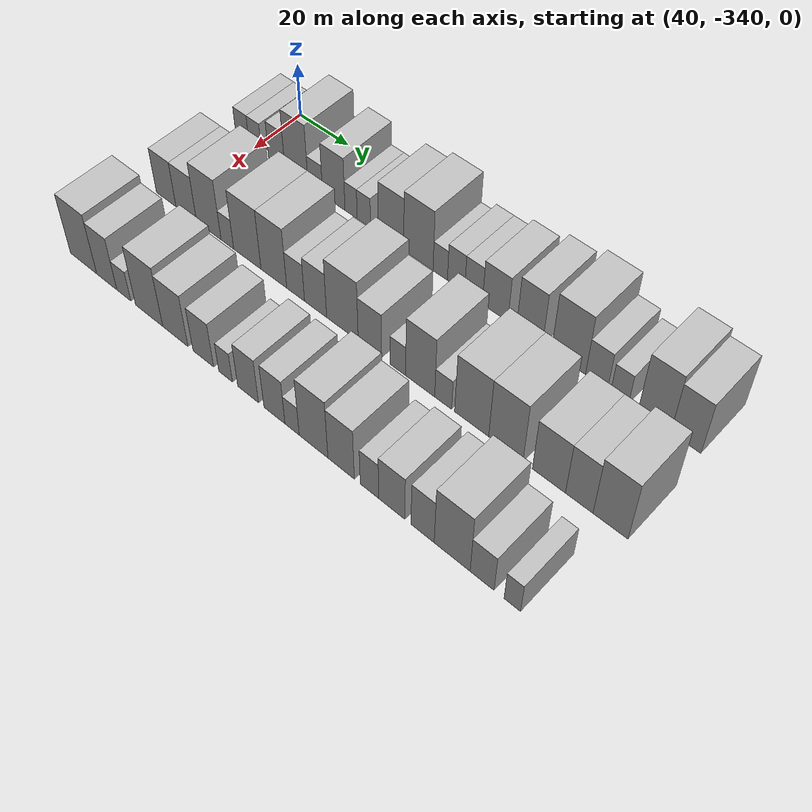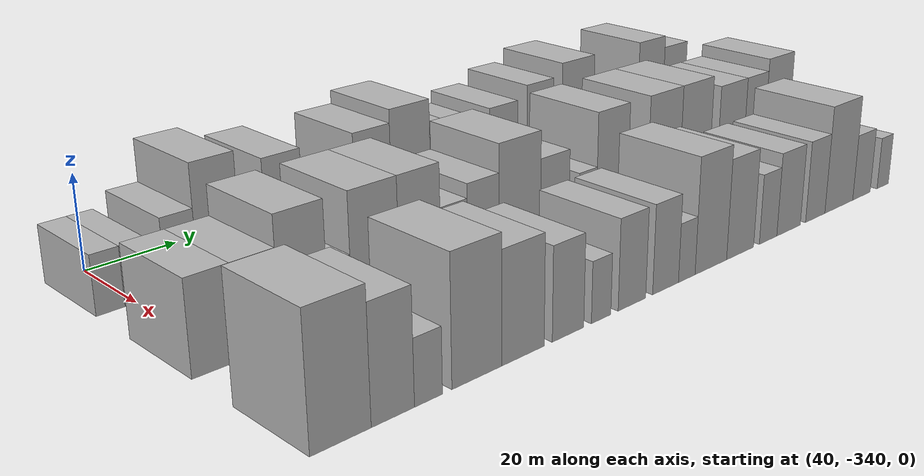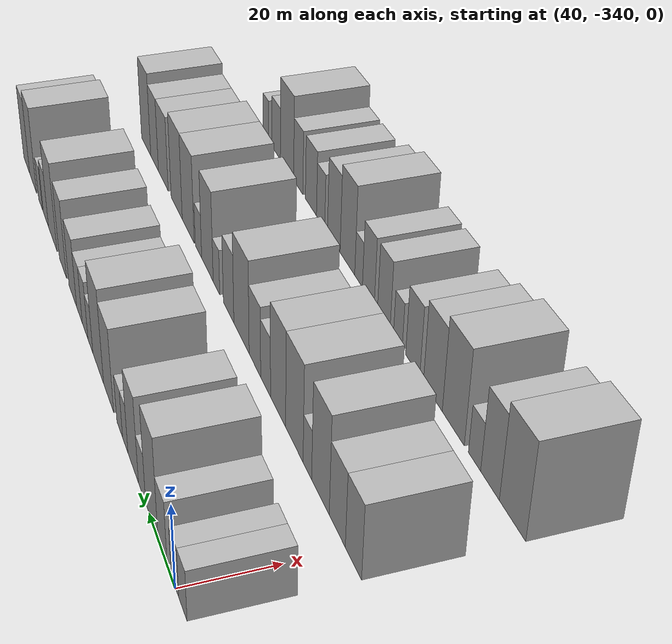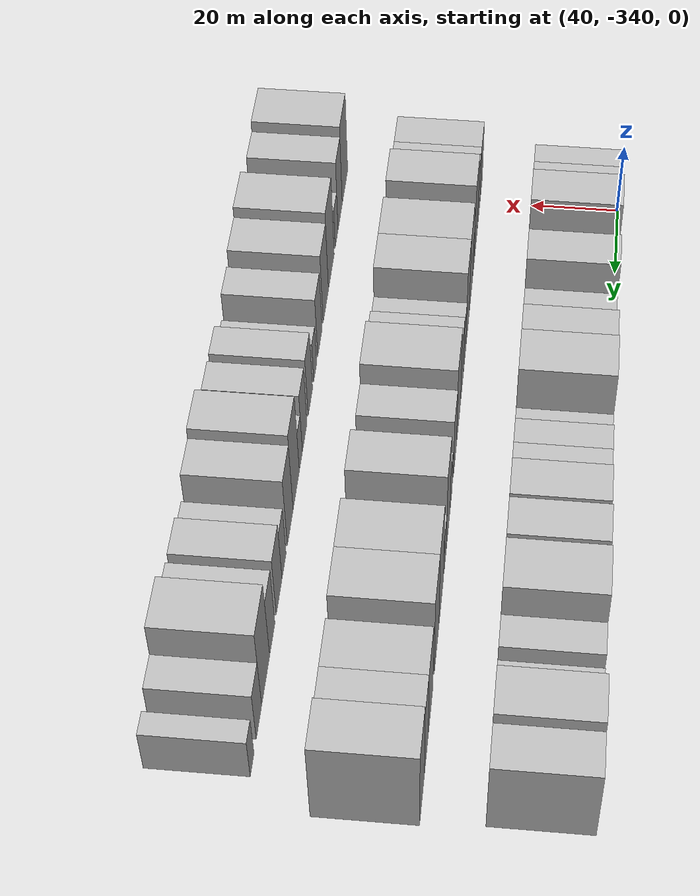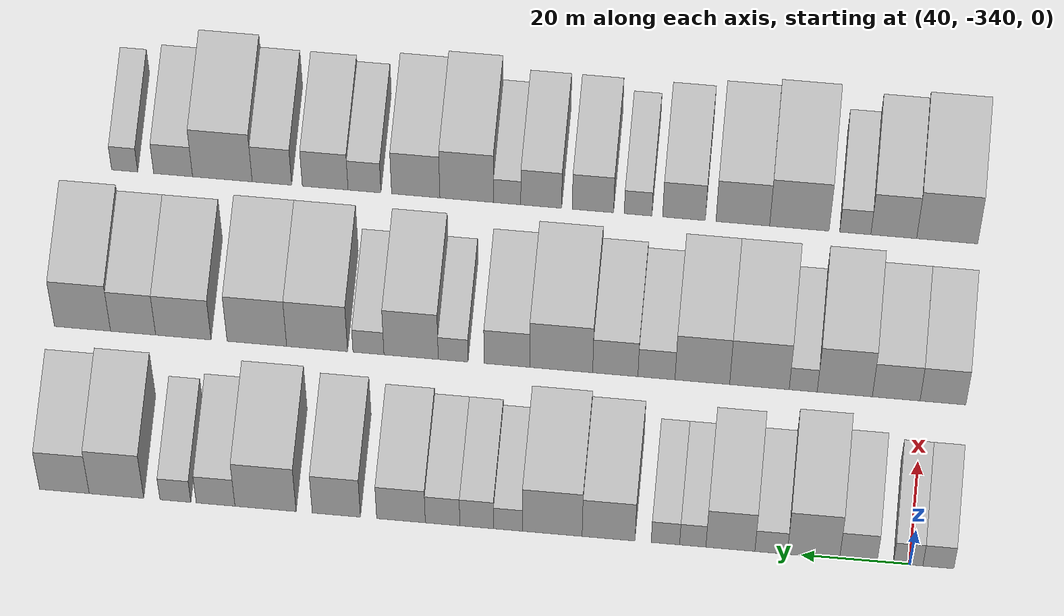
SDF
<sdf version="1.6">
 <world name="default">
  <model name="building_1">
   <static>1</static>
   <pose>50.0000 -345.1450 0 0.000000 0.000000 0.000000</pose>
   <link name="link">
    <pose>0 0 6.00 0 0 0</pose>
    <collision name="collision"><geometry><box><size>20.0000 5.7100 12.0000</size></box></geometry></collision>
    <visual name="visual">
     <cast_shadows>0</cast_shadows>
     <geometry><box><size>20.0000 5.7100 12.0000</size></box></geometry>
     <material>
      <script>
       <uri>model://HANNAS_wall/materials/scripts</uri>
       <uri>model://HANNAS_wall/materials/textures</uri>
       <name>vrc/HANNAS_wall</name>
      </script>
     </material>
    </visual>
   </link>
  </model>
  <model name="building_2">
   <static>1</static>
   <pose>50.0000 -339.5794 0 0.000000 0.000000 0.000000</pose>
   <link name="link">
    <pose>0 0 6.00 0 0 0</pose>
    <collision name="collision"><geometry><box><size>20.0000 5.4212 12.0000</size></box></geometry></collision>
    <visual name="visual">
     <cast_shadows>0</cast_shadows>
     <geometry><box><size>20.0000 5.4212 12.0000</size></box></geometry>
     <material>
      <script>
       <uri>model://HANNAS_wall/materials/scripts</uri>
       <uri>model://HANNAS_wall/materials/textures</uri>
       <name>vrc/HANNAS_wall</name>
      </script>
     </material>
    </visual>
   </link>
  </model>
  <model name="building_3">
   <static>1</static>
   <pose>50.0000 -330.4114 0 0.000000 0.000000 0.000000</pose>
   <link name="link">
    <pose>0 0 7.50 0 0 0</pose>
    <collision name="collision"><geometry><box><size>20.0000 6.9149 15.0000</size></box></geometry></collision>
    <visual name="visual">
     <cast_shadows>0</cast_shadows>
     <geometry><box><size>20.0000 6.9149 15.0000</size></box></geometry>
     <material>
      <script>
       <uri>model://HANNAS_wall/materials/scripts</uri>
       <uri>model://HANNAS_wall/materials/textures</uri>
       <name>vrc/HANNAS_wall</name>
      </script>
     </material>
    </visual>
   </link>
  </model>
  <model name="building_4">
   <static>1</static>
   <pose>50.0000 -322.1188 0 0.000000 0.000000 0.000000</pose>
   <link name="link">
    <pose>0 0 12.00 0 0 0</pose>
    <collision name="collision"><geometry><box><size>20.0000 9.6703 24.0000</size></box></geometry></collision>
    <visual name="visual">
     <cast_shadows>0</cast_shadows>
     <geometry><box><size>20.0000 9.6703 24.0000</size></box></geometry>
     <material>
      <script>
       <uri>model://HANNAS_wall/materials/scripts</uri>
       <uri>model://HANNAS_wall/materials/textures</uri>
       <name>vrc/HANNAS_wall</name>
      </script>
     </material>
    </visual>
   </link>
  </model>
  <model name="building_5">
   <static>1</static>
   <pose>50.0000 -314.3056 0 0.000000 0.000000 0.000000</pose>
   <link name="link">
    <pose>0 0 6.00 0 0 0</pose>
    <collision name="collision"><geometry><box><size>20.0000 5.9560 12.0000</size></box></geometry></collision>
    <visual name="visual">
     <cast_shadows>0</cast_shadows>
     <geometry><box><size>20.0000 5.9560 12.0000</size></box></geometry>
     <material>
      <script>
       <uri>model://HANNAS_wall/materials/scripts</uri>
       <uri>model://HANNAS_wall/materials/textures</uri>
       <name>vrc/HANNAS_wall</name>
      </script>
     </material>
    </visual>
   </link>
  </model>
  <model name="building_6">
   <static>1</static>
   <pose>50.0000 -306.8105 0 0.000000 0.000000 0.000000</pose>
   <link name="link">
    <pose>0 0 10.50 0 0 0</pose>
    <collision name="collision"><geometry><box><size>20.0000 9.0343 21.0000</size></box></geometry></collision>
    <visual name="visual">
     <cast_shadows>0</cast_shadows>
     <geometry><box><size>20.0000 9.0343 21.0000</size></box></geometry>
     <material>
      <script>
       <uri>model://HANNAS_wall/materials/scripts</uri>
       <uri>model://HANNAS_wall/materials/textures</uri>
       <name>vrc/HANNAS_wall</name>
      </script>
     </material>
    </visual>
   </link>
  </model>
  <model name="building_7">
   <static>1</static>
   <pose>50.0000 -299.8714 0 0.000000 0.000000 0.000000</pose>
   <link name="link">
    <pose>0 0 6.00 0 0 0</pose>
    <collision name="collision"><geometry><box><size>20.0000 4.8438 12.0000</size></box></geometry></collision>
    <visual name="visual">
     <cast_shadows>0</cast_shadows>
     <geometry><box><size>20.0000 4.8438 12.0000</size></box></geometry>
     <material>
      <script>
       <uri>model://HANNAS_wall/materials/scripts</uri>
       <uri>model://HANNAS_wall/materials/textures</uri>
       <name>vrc/HANNAS_wall</name>
      </script>
     </material>
    </visual>
   </link>
  </model>
  <model name="building_8">
   <static>1</static>
   <pose>50.0000 -294.8273 0 0.000000 0.000000 0.000000</pose>
   <link name="link">
    <pose>0 0 6.00 0 0 0</pose>
    <collision name="collision"><geometry><box><size>20.0000 5.2445 12.0000</size></box></geometry></collision>
    <visual name="visual">
     <cast_shadows>0</cast_shadows>
     <geometry><box><size>20.0000 5.2445 12.0000</size></box></geometry>
     <material>
      <script>
       <uri>model://HANNAS_wall/materials/scripts</uri>
       <uri>model://HANNAS_wall/materials/textures</uri>
       <name>vrc/HANNAS_wall</name>
      </script>
     </material>
    </visual>
   </link>
  </model>
  <model name="building_9">
   <static>1</static>
   <pose>50.0000 -284.3233 0 0.000000 0.000000 0.000000</pose>
   <link name="link">
    <pose>0 0 10.50 0 0 0</pose>
    <collision name="collision"><geometry><box><size>20.0000 9.7636 21.0000</size></box></geometry></collision>
    <visual name="visual">
     <cast_shadows>0</cast_shadows>
     <geometry><box><size>20.0000 9.7636 21.0000</size></box></geometry>
     <material>
      <script>
       <uri>model://HANNAS_wall/materials/scripts</uri>
       <uri>model://HANNAS_wall/materials/textures</uri>
       <name>vrc/HANNAS_wall</name>
      </script>
     </material>
    </visual>
   </link>
  </model>
  <model name="building_10">
   <static>1</static>
   <pose>50.0000 -273.9174 0 0.000000 0.000000 0.000000</pose>
   <link name="link">
    <pose>0 0 12.00 0 0 0</pose>
    <collision name="collision"><geometry><box><size>20.0000 11.0482 24.0000</size></box></geometry></collision>
    <visual name="visual">
     <cast_shadows>0</cast_shadows>
     <geometry><box><size>20.0000 11.0482 24.0000</size></box></geometry>
     <material>
      <script>
       <uri>model://HANNAS_wall/materials/scripts</uri>
       <uri>model://HANNAS_wall/materials/textures</uri>
       <name>vrc/HANNAS_wall</name>
      </script>
     </material>
    </visual>
   </link>
  </model>
  <model name="building_11">
   <static>1</static>
   <pose>50.0000 -265.7426 0 0.000000 0.000000 0.000000</pose>
   <link name="link">
    <pose>0 0 6.00 0 0 0</pose>
    <collision name="collision"><geometry><box><size>20.0000 5.3013 12.0000</size></box></geometry></collision>
    <visual name="visual">
     <cast_shadows>0</cast_shadows>
     <geometry><box><size>20.0000 5.3013 12.0000</size></box></geometry>
     <material>
      <script>
       <uri>model://HANNAS_wall/materials/scripts</uri>
       <uri>model://HANNAS_wall/materials/textures</uri>
       <name>vrc/HANNAS_wall</name>
      </script>
     </material>
    </visual>
   </link>
  </model>
  <model name="building_12">
   <static>1</static>
   <pose>50.0000 -259.9697 0 0.000000 0.000000 0.000000</pose>
   <link name="link">
    <pose>0 0 7.50 0 0 0</pose>
    <collision name="collision"><geometry><box><size>20.0000 6.2447 15.0000</size></box></geometry></collision>
    <visual name="visual">
     <cast_shadows>0</cast_shadows>
     <geometry><box><size>20.0000 6.2447 15.0000</size></box></geometry>
     <material>
      <script>
       <uri>model://HANNAS_wall/materials/scripts</uri>
       <uri>model://HANNAS_wall/materials/textures</uri>
       <name>vrc/HANNAS_wall</name>
      </script>
     </material>
    </visual>
   </link>
  </model>
  <model name="building_13">
   <static>1</static>
   <pose>50.0000 -253.6553 0 0.000000 0.000000 0.000000</pose>
   <link name="link">
    <pose>0 0 7.50 0 0 0</pose>
    <collision name="collision"><geometry><box><size>20.0000 6.3839 15.0000</size></box></geometry></collision>
    <visual name="visual">
     <cast_shadows>0</cast_shadows>
     <geometry><box><size>20.0000 6.3839 15.0000</size></box></geometry>
     <material>
      <script>
       <uri>model://HANNAS_wall/materials/scripts</uri>
       <uri>model://HANNAS_wall/materials/textures</uri>
       <name>vrc/HANNAS_wall</name>
      </script>
     </material>
    </visual>
   </link>
  </model>
  <model name="building_14">
   <static>1</static>
   <pose>50.0000 -245.9653 0 0.000000 0.000000 0.000000</pose>
   <link name="link">
    <pose>0 0 9.00 0 0 0</pose>
    <collision name="collision"><geometry><box><size>20.0000 8.9961 18.0000</size></box></geometry></collision>
    <visual name="visual">
     <cast_shadows>0</cast_shadows>
     <geometry><box><size>20.0000 8.9961 18.0000</size></box></geometry>
     <material>
      <script>
       <uri>model://HANNAS_wall/materials/scripts</uri>
       <uri>model://HANNAS_wall/materials/textures</uri>
       <name>vrc/HANNAS_wall</name>
      </script>
     </material>
    </visual>
   </link>
  </model>
  <model name="building_15">
   <static>1</static>
   <pose>50.0000 -234.0127 0 0.000000 0.000000 0.000000</pose>
   <link name="link">
    <pose>0 0 10.50 0 0 0</pose>
    <collision name="collision"><geometry><box><size>20.0000 8.9091 21.0000</size></box></geometry></collision>
    <visual name="visual">
     <cast_shadows>0</cast_shadows>
     <geometry><box><size>20.0000 8.9091 21.0000</size></box></geometry>
     <material>
      <script>
       <uri>model://HANNAS_wall/materials/scripts</uri>
       <uri>model://HANNAS_wall/materials/textures</uri>
       <name>vrc/HANNAS_wall</name>
      </script>
     </material>
    </visual>
   </link>
  </model>
  <model name="building_16">
   <static>1</static>
   <pose>50.0000 -220.8957 0 0.000000 0.000000 0.000000</pose>
   <link name="link">
    <pose>0 0 12.00 0 0 0</pose>
    <collision name="collision"><geometry><box><size>20.0000 11.3247 24.0000</size></box></geometry></collision>
    <visual name="visual">
     <cast_shadows>0</cast_shadows>
     <geometry><box><size>20.0000 11.3247 24.0000</size></box></geometry>
     <material>
      <script>
       <uri>model://HANNAS_wall/materials/scripts</uri>
       <uri>model://HANNAS_wall/materials/textures</uri>
       <name>vrc/HANNAS_wall</name>
      </script>
     </material>
    </visual>
   </link>
  </model>
  <model name="building_17">
   <static>1</static>
   <pose>50.0000 -211.6455 0 0.000000 0.000000 0.000000</pose>
   <link name="link">
    <pose>0 0 7.50 0 0 0</pose>
    <collision name="collision"><geometry><box><size>20.0000 7.1758 15.0000</size></box></geometry></collision>
    <visual name="visual">
     <cast_shadows>0</cast_shadows>
     <geometry><box><size>20.0000 7.1758 15.0000</size></box></geometry>
     <material>
      <script>
       <uri>model://HANNAS_wall/materials/scripts</uri>
       <uri>model://HANNAS_wall/materials/textures</uri>
       <name>vrc/HANNAS_wall</name>
      </script>
     </material>
    </visual>
   </link>
  </model>
  <model name="building_18">
   <static>1</static>
   <pose>50.0000 -204.1950 0 0.000000 0.000000 0.000000</pose>
   <link name="link">
    <pose>0 0 6.00 0 0 0</pose>
    <collision name="collision"><geometry><box><size>20.0000 5.7251 12.0000</size></box></geometry></collision>
    <visual name="visual">
     <cast_shadows>0</cast_shadows>
     <geometry><box><size>20.0000 5.7251 12.0000</size></box></geometry>
     <material>
      <script>
       <uri>model://HANNAS_wall/materials/scripts</uri>
       <uri>model://HANNAS_wall/materials/textures</uri>
       <name>vrc/HANNAS_wall</name>
      </script>
     </material>
    </visual>
   </link>
  </model>
  <model name="building_19">
   <static>1</static>
   <pose>50.0000 -193.2733 0 0.000000 0.000000 0.000000</pose>
   <link name="link">
    <pose>0 0 12.00 0 0 0</pose>
    <collision name="collision"><geometry><box><size>20.0000 10.1184 24.0000</size></box></geometry></collision>
    <visual name="visual">
     <cast_shadows>0</cast_shadows>
     <geometry><box><size>20.0000 10.1184 24.0000</size></box></geometry>
     <material>
      <script>
       <uri>model://HANNAS_wall/materials/scripts</uri>
       <uri>model://HANNAS_wall/materials/textures</uri>
       <name>vrc/HANNAS_wall</name>
      </script>
     </material>
    </visual>
   </link>
  </model>
  <model name="building_20">
   <static>1</static>
   <pose>50.0000 -183.6181 0 0.000000 0.000000 0.000000</pose>
   <link name="link">
    <pose>0 0 10.50 0 0 0</pose>
    <collision name="collision"><geometry><box><size>20.0000 9.1921 21.0000</size></box></geometry></collision>
    <visual name="visual">
     <cast_shadows>0</cast_shadows>
     <geometry><box><size>20.0000 9.1921 21.0000</size></box></geometry>
     <material>
      <script>
       <uri>model://HANNAS_wall/materials/scripts</uri>
       <uri>model://HANNAS_wall/materials/textures</uri>
       <name>vrc/HANNAS_wall</name>
      </script>
     </material>
    </visual>
   </link>
  </model>
  <model name="building_78">
   <static>1</static>
   <pose>82.0000 -343.7383 0 0.000000 0.000000 0.000000</pose>
   <link name="link">
    <pose>0 0 9.00 0 0 0</pose>
    <collision name="collision"><geometry><box><size>20.0000 8.5235 18.0000</size></box></geometry></collision>
    <visual name="visual">
     <cast_shadows>0</cast_shadows>
     <geometry><box><size>20.0000 8.5235 18.0000</size></box></geometry>
     <material>
      <script>
       <uri>model://HANNAS_wall/materials/scripts</uri>
       <uri>model://HANNAS_wall/materials/textures</uri>
       <name>vrc/HANNAS_wall</name>
      </script>
     </material>
    </visual>
   </link>
  </model>
  <model name="building_79">
   <static>1</static>
   <pose>82.0000 -335.0491 0 0.000000 0.000000 0.000000</pose>
   <link name="link">
    <pose>0 0 9.00 0 0 0</pose>
    <collision name="collision"><geometry><box><size>20.0000 8.8548 18.0000</size></box></geometry></collision>
    <visual name="visual">
     <cast_shadows>0</cast_shadows>
     <geometry><box><size>20.0000 8.8548 18.0000</size></box></geometry>
     <material>
      <script>
       <uri>model://HANNAS_wall/materials/scripts</uri>
       <uri>model://HANNAS_wall/materials/textures</uri>
       <name>vrc/HANNAS_wall</name>
      </script>
     </material>
    </visual>
   </link>
  </model>
  <model name="building_80">
   <static>1</static>
   <pose>82.0000 -325.4952 0 0.000000 0.000000 0.000000</pose>
   <link name="link">
    <pose>0 0 12.00 0 0 0</pose>
    <collision name="collision"><geometry><box><size>20.0000 10.2530 24.0000</size></box></geometry></collision>
    <visual name="visual">
     <cast_shadows>0</cast_shadows>
     <geometry><box><size>20.0000 10.2530 24.0000</size></box></geometry>
     <material>
      <script>
       <uri>model://HANNAS_wall/materials/scripts</uri>
       <uri>model://HANNAS_wall/materials/textures</uri>
       <name>vrc/HANNAS_wall</name>
      </script>
     </material>
    </visual>
   </link>
  </model>
  <model name="building_81">
   <static>1</static>
   <pose>82.0000 -317.7630 0 0.000000 0.000000 0.000000</pose>
   <link name="link">
    <pose>0 0 6.00 0 0 0</pose>
    <collision name="collision"><geometry><box><size>20.0000 5.2115 12.0000</size></box></geometry></collision>
    <visual name="visual">
     <cast_shadows>0</cast_shadows>
     <geometry><box><size>20.0000 5.2115 12.0000</size></box></geometry>
     <material>
      <script>
       <uri>model://HANNAS_wall/materials/scripts</uri>
       <uri>model://HANNAS_wall/materials/textures</uri>
       <name>vrc/HANNAS_wall</name>
      </script>
     </material>
    </visual>
   </link>
  </model>
  <model name="building_82">
   <static>1</static>
   <pose>82.0000 -309.6234 0 0.000000 0.000000 0.000000</pose>
   <link name="link">
    <pose>0 0 12.00 0 0 0</pose>
    <collision name="collision"><geometry><box><size>20.0000 11.0677 24.0000</size></box></geometry></collision>
    <visual name="visual">
     <cast_shadows>0</cast_shadows>
     <geometry><box><size>20.0000 11.0677 24.0000</size></box></geometry>
     <material>
      <script>
       <uri>model://HANNAS_wall/materials/scripts</uri>
       <uri>model://HANNAS_wall/materials/textures</uri>
       <name>vrc/HANNAS_wall</name>
      </script>
     </material>
    </visual>
   </link>
  </model>
  <model name="building_83">
   <static>1</static>
   <pose>82.0000 -299.0033 0 0.000000 0.000000 0.000000</pose>
   <link name="link">
    <pose>0 0 12.00 0 0 0</pose>
    <collision name="collision"><geometry><box><size>20.0000 10.1725 24.0000</size></box></geometry></collision>
    <visual name="visual">
     <cast_shadows>0</cast_shadows>
     <geometry><box><size>20.0000 10.1725 24.0000</size></box></geometry>
     <material>
      <script>
       <uri>model://HANNAS_wall/materials/scripts</uri>
       <uri>model://HANNAS_wall/materials/textures</uri>
       <name>vrc/HANNAS_wall</name>
      </script>
     </material>
    </visual>
   </link>
  </model>
  <model name="building_84">
   <static>1</static>
   <pose>82.0000 -290.4678 0 0.000000 0.000000 0.000000</pose>
   <link name="link">
    <pose>0 0 7.50 0 0 0</pose>
    <collision name="collision"><geometry><box><size>20.0000 6.8985 15.0000</size></box></geometry></collision>
    <visual name="visual">
     <cast_shadows>0</cast_shadows>
     <geometry><box><size>20.0000 6.8985 15.0000</size></box></geometry>
     <material>
      <script>
       <uri>model://HANNAS_wall/materials/scripts</uri>
       <uri>model://HANNAS_wall/materials/textures</uri>
       <name>vrc/HANNAS_wall</name>
      </script>
     </material>
    </visual>
   </link>
  </model>
  <model name="building_85">
   <static>1</static>
   <pose>82.0000 -282.8060 0 0.000000 0.000000 0.000000</pose>
   <link name="link">
    <pose>0 0 9.00 0 0 0</pose>
    <collision name="collision"><geometry><box><size>20.0000 8.4251 18.0000</size></box></geometry></collision>
    <visual name="visual">
     <cast_shadows>0</cast_shadows>
     <geometry><box><size>20.0000 8.4251 18.0000</size></box></geometry>
     <material>
      <script>
       <uri>model://HANNAS_wall/materials/scripts</uri>
       <uri>model://HANNAS_wall/materials/textures</uri>
       <name>vrc/HANNAS_wall</name>
      </script>
     </material>
    </visual>
   </link>
  </model>
  <model name="building_86">
   <static>1</static>
   <pose>82.0000 -272.7230 0 0.000000 0.000000 0.000000</pose>
   <link name="link">
    <pose>0 0 12.00 0 0 0</pose>
    <collision name="collision"><geometry><box><size>20.0000 11.7410 24.0000</size></box></geometry></collision>
    <visual name="visual">
     <cast_shadows>0</cast_shadows>
     <geometry><box><size>20.0000 11.7410 24.0000</size></box></geometry>
     <material>
      <script>
       <uri>model://HANNAS_wall/materials/scripts</uri>
       <uri>model://HANNAS_wall/materials/textures</uri>
       <name>vrc/HANNAS_wall</name>
      </script>
     </material>
    </visual>
   </link>
  </model>
  <model name="building_87">
   <static>1</static>
   <pose>82.0000 -262.6083 0 0.000000 0.000000 0.000000</pose>
   <link name="link">
    <pose>0 0 9.00 0 0 0</pose>
    <collision name="collision"><geometry><box><size>20.0000 8.4883 18.0000</size></box></geometry></collision>
    <visual name="visual">
     <cast_shadows>0</cast_shadows>
     <geometry><box><size>20.0000 8.4883 18.0000</size></box></geometry>
     <material>
      <script>
       <uri>model://HANNAS_wall/materials/scripts</uri>
       <uri>model://HANNAS_wall/materials/textures</uri>
       <name>vrc/HANNAS_wall</name>
      </script>
     </material>
    </visual>
   </link>
  </model>
  <model name="building_88">
   <static>1</static>
   <pose>82.0000 -252.5880 0 0.000000 0.000000 0.000000</pose>
   <link name="link">
    <pose>0 0 6.00 0 0 0</pose>
    <collision name="collision"><geometry><box><size>20.0000 5.5523 12.0000</size></box></geometry></collision>
    <visual name="visual">
     <cast_shadows>0</cast_shadows>
     <geometry><box><size>20.0000 5.5523 12.0000</size></box></geometry>
     <material>
      <script>
       <uri>model://HANNAS_wall/materials/scripts</uri>
       <uri>model://HANNAS_wall/materials/textures</uri>
       <name>vrc/HANNAS_wall</name>
      </script>
     </material>
    </visual>
   </link>
  </model>
  <model name="building_89">
   <static>1</static>
   <pose>82.0000 -244.7472 0 0.000000 0.000000 0.000000</pose>
   <link name="link">
    <pose>0 0 12.00 0 0 0</pose>
    <collision name="collision"><geometry><box><size>20.0000 10.1295 24.0000</size></box></geometry></collision>
    <visual name="visual">
     <cast_shadows>0</cast_shadows>
     <geometry><box><size>20.0000 10.1295 24.0000</size></box></geometry>
     <material>
      <script>
       <uri>model://HANNAS_wall/materials/scripts</uri>
       <uri>model://HANNAS_wall/materials/textures</uri>
       <name>vrc/HANNAS_wall</name>
      </script>
     </material>
    </visual>
   </link>
  </model>
  <model name="building_90">
   <static>1</static>
   <pose>82.0000 -236.7899 0 0.000000 0.000000 0.000000</pose>
   <link name="link">
    <pose>0 0 6.00 0 0 0</pose>
    <collision name="collision"><geometry><box><size>20.0000 5.7850 12.0000</size></box></geometry></collision>
    <visual name="visual">
     <cast_shadows>0</cast_shadows>
     <geometry><box><size>20.0000 5.7850 12.0000</size></box></geometry>
     <material>
      <script>
       <uri>model://HANNAS_wall/materials/scripts</uri>
       <uri>model://HANNAS_wall/materials/textures</uri>
       <name>vrc/HANNAS_wall</name>
      </script>
     </material>
    </visual>
   </link>
  </model>
  <model name="building_91">
   <static>1</static>
   <pose>82.0000 -227.2061 0 0.000000 0.000000 0.000000</pose>
   <link name="link">
    <pose>0 0 12.00 0 0 0</pose>
    <collision name="collision"><geometry><box><size>20.0000 11.3827 24.0000</size></box></geometry></collision>
    <visual name="visual">
     <cast_shadows>0</cast_shadows>
     <geometry><box><size>20.0000 11.3827 24.0000</size></box></geometry>
     <material>
      <script>
       <uri>model://HANNAS_wall/materials/scripts</uri>
       <uri>model://HANNAS_wall/materials/textures</uri>
       <name>vrc/HANNAS_wall</name>
      </script>
     </material>
    </visual>
   </link>
  </model>
  <model name="building_92">
   <static>1</static>
   <pose>82.0000 -215.9540 0 0.000000 0.000000 0.000000</pose>
   <link name="link">
    <pose>0 0 12.00 0 0 0</pose>
    <collision name="collision"><geometry><box><size>20.0000 11.1214 24.0000</size></box></geometry></collision>
    <visual name="visual">
     <cast_shadows>0</cast_shadows>
     <geometry><box><size>20.0000 11.1214 24.0000</size></box></geometry>
     <material>
      <script>
       <uri>model://HANNAS_wall/materials/scripts</uri>
       <uri>model://HANNAS_wall/materials/textures</uri>
       <name>vrc/HANNAS_wall</name>
      </script>
     </material>
    </visual>
   </link>
  </model>
  <model name="building_93">
   <static>1</static>
   <pose>82.0000 -202.2170 0 0.000000 0.000000 0.000000</pose>
   <link name="link">
    <pose>0 0 10.50 0 0 0</pose>
    <collision name="collision"><geometry><box><size>20.0000 10.3527 21.0000</size></box></geometry></collision>
    <visual name="visual">
     <cast_shadows>0</cast_shadows>
     <geometry><box><size>20.0000 10.3527 21.0000</size></box></geometry>
     <material>
      <script>
       <uri>model://HANNAS_wall/materials/scripts</uri>
       <uri>model://HANNAS_wall/materials/textures</uri>
       <name>vrc/HANNAS_wall</name>
      </script>
     </material>
    </visual>
   </link>
  </model>
  <model name="building_94">
   <static>1</static>
   <pose>82.0000 -192.8221 0 0.000000 0.000000 0.000000</pose>
   <link name="link">
    <pose>0 0 10.50 0 0 0</pose>
    <collision name="collision"><geometry><box><size>20.0000 8.4371 21.0000</size></box></geometry></collision>
    <visual name="visual">
     <cast_shadows>0</cast_shadows>
     <geometry><box><size>20.0000 8.4371 21.0000</size></box></geometry>
     <material>
      <script>
       <uri>model://HANNAS_wall/materials/scripts</uri>
       <uri>model://HANNAS_wall/materials/textures</uri>
       <name>vrc/HANNAS_wall</name>
      </script>
     </material>
    </visual>
   </link>
  </model>
  <model name="building_95">
   <static>1</static>
   <pose>82.0000 -183.3629 0 0.000000 0.000000 0.000000</pose>
   <link name="link">
    <pose>0 0 12.00 0 0 0</pose>
    <collision name="collision"><geometry><box><size>20.0000 10.4814 24.0000</size></box></geometry></collision>
    <visual name="visual">
     <cast_shadows>0</cast_shadows>
     <geometry><box><size>20.0000 10.4814 24.0000</size></box></geometry>
     <material>
      <script>
       <uri>model://HANNAS_wall/materials/scripts</uri>
       <uri>model://HANNAS_wall/materials/textures</uri>
       <name>vrc/HANNAS_wall</name>
      </script>
     </material>
    </visual>
   </link>
  </model>
  <model name="building_146">
   <static>1</static>
   <pose>114.0000 -342.2808 0 0.000000 0.000000 0.000000</pose>
   <link name="link">
    <pose>0 0 12.00 0 0 0</pose>
    <collision name="collision"><geometry><box><size>20.0000 11.4384 24.0000</size></box></geometry></collision>
    <visual name="visual">
     <cast_shadows>0</cast_shadows>
     <geometry><box><size>20.0000 11.4384 24.0000</size></box></geometry>
     <material>
      <script>
       <uri>model://HANNAS_wall/materials/scripts</uri>
       <uri>model://HANNAS_wall/materials/textures</uri>
       <name>vrc/HANNAS_wall</name>
      </script>
     </material>
    </visual>
   </link>
  </model>
  <model name="building_147">
   <static>1</static>
   <pose>114.0000 -332.2686 0 0.000000 0.000000 0.000000</pose>
   <link name="link">
    <pose>0 0 10.50 0 0 0</pose>
    <collision name="collision"><geometry><box><size>20.0000 8.5861 21.0000</size></box></geometry></collision>
    <visual name="visual">
     <cast_shadows>0</cast_shadows>
     <geometry><box><size>20.0000 8.5861 21.0000</size></box></geometry>
     <material>
      <script>
       <uri>model://HANNAS_wall/materials/scripts</uri>
       <uri>model://HANNAS_wall/materials/textures</uri>
       <name>vrc/HANNAS_wall</name>
      </script>
     </material>
    </visual>
   </link>
  </model>
  <model name="building_148">
   <static>1</static>
   <pose>114.0000 -325.0605 0 0.000000 0.000000 0.000000</pose>
   <link name="link">
    <pose>0 0 6.00 0 0 0</pose>
    <collision name="collision"><geometry><box><size>20.0000 5.8301 12.0000</size></box></geometry></collision>
    <visual name="visual">
     <cast_shadows>0</cast_shadows>
     <geometry><box><size>20.0000 5.8301 12.0000</size></box></geometry>
     <material>
      <script>
       <uri>model://HANNAS_wall/materials/scripts</uri>
       <uri>model://HANNAS_wall/materials/textures</uri>
       <name>vrc/HANNAS_wall</name>
      </script>
     </material>
    </visual>
   </link>
  </model>
  <model name="building_149">
   <static>1</static>
   <pose>114.0000 -314.5723 0 0.000000 0.000000 0.000000</pose>
   <link name="link">
    <pose>0 0 12.00 0 0 0</pose>
    <collision name="collision"><geometry><box><size>20.0000 11.1462 24.0000</size></box></geometry></collision>
    <visual name="visual">
     <cast_shadows>0</cast_shadows>
     <geometry><box><size>20.0000 11.1462 24.0000</size></box></geometry>
     <material>
      <script>
       <uri>model://HANNAS_wall/materials/scripts</uri>
       <uri>model://HANNAS_wall/materials/textures</uri>
       <name>vrc/HANNAS_wall</name>
      </script>
     </material>
    </visual>
   </link>
  </model>
  <model name="building_150">
   <static>1</static>
   <pose>114.0000 -303.9671 0 0.000000 0.000000 0.000000</pose>
   <link name="link">
    <pose>0 0 10.50 0 0 0</pose>
    <collision name="collision"><geometry><box><size>20.0000 10.0642 21.0000</size></box></geometry></collision>
    <visual name="visual">
     <cast_shadows>0</cast_shadows>
     <geometry><box><size>20.0000 10.0642 21.0000</size></box></geometry>
     <material>
      <script>
       <uri>model://HANNAS_wall/materials/scripts</uri>
       <uri>model://HANNAS_wall/materials/textures</uri>
       <name>vrc/HANNAS_wall</name>
      </script>
     </material>
    </visual>
   </link>
  </model>
  <model name="building_151">
   <static>1</static>
   <pose>114.0000 -292.9278 0 0.000000 0.000000 0.000000</pose>
   <link name="link">
    <pose>0 0 9.00 0 0 0</pose>
    <collision name="collision"><geometry><box><size>20.0000 8.0143 18.0000</size></box></geometry></collision>
    <visual name="visual">
     <cast_shadows>0</cast_shadows>
     <geometry><box><size>20.0000 8.0143 18.0000</size></box></geometry>
     <material>
      <script>
       <uri>model://HANNAS_wall/materials/scripts</uri>
       <uri>model://HANNAS_wall/materials/textures</uri>
       <name>vrc/HANNAS_wall</name>
      </script>
     </material>
    </visual>
   </link>
  </model>
  <model name="building_152">
   <static>1</static>
   <pose>114.0000 -284.3196 0 0.000000 0.000000 0.000000</pose>
   <link name="link">
    <pose>0 0 6.00 0 0 0</pose>
    <collision name="collision"><geometry><box><size>20.0000 5.2021 12.0000</size></box></geometry></collision>
    <visual name="visual">
     <cast_shadows>0</cast_shadows>
     <geometry><box><size>20.0000 5.2021 12.0000</size></box></geometry>
     <material>
      <script>
       <uri>model://HANNAS_wall/materials/scripts</uri>
       <uri>model://HANNAS_wall/materials/textures</uri>
       <name>vrc/HANNAS_wall</name>
      </script>
     </material>
    </visual>
   </link>
  </model>
  <model name="building_153">
   <static>1</static>
   <pose>114.0000 -275.8383 0 0.000000 0.000000 0.000000</pose>
   <link name="link">
    <pose>0 0 9.00 0 0 0</pose>
    <collision name="collision"><geometry><box><size>20.0000 7.7605 18.0000</size></box></geometry></collision>
    <visual name="visual">
     <cast_shadows>0</cast_shadows>
     <geometry><box><size>20.0000 7.7605 18.0000</size></box></geometry>
     <material>
      <script>
       <uri>model://HANNAS_wall/materials/scripts</uri>
       <uri>model://HANNAS_wall/materials/textures</uri>
       <name>vrc/HANNAS_wall</name>
      </script>
     </material>
    </visual>
   </link>
  </model>
  <model name="building_154">
   <static>1</static>
   <pose>114.0000 -266.1221 0 0.000000 0.000000 0.000000</pose>
   <link name="link">
    <pose>0 0 9.00 0 0 0</pose>
    <collision name="collision"><geometry><box><size>20.0000 7.6718 18.0000</size></box></geometry></collision>
    <visual name="visual">
     <cast_shadows>0</cast_shadows>
     <geometry><box><size>20.0000 7.6718 18.0000</size></box></geometry>
     <material>
      <script>
       <uri>model://HANNAS_wall/materials/scripts</uri>
       <uri>model://HANNAS_wall/materials/textures</uri>
       <name>vrc/HANNAS_wall</name>
      </script>
     </material>
    </visual>
   </link>
  </model>
  <model name="building_155">
   <static>1</static>
   <pose>114.0000 -259.7288 0 0.000000 0.000000 0.000000</pose>
   <link name="link">
    <pose>0 0 6.00 0 0 0</pose>
    <collision name="collision"><geometry><box><size>20.0000 5.1150 12.0000</size></box></geometry></collision>
    <visual name="visual">
     <cast_shadows>0</cast_shadows>
     <geometry><box><size>20.0000 5.1150 12.0000</size></box></geometry>
     <material>
      <script>
       <uri>model://HANNAS_wall/materials/scripts</uri>
       <uri>model://HANNAS_wall/materials/textures</uri>
       <name>vrc/HANNAS_wall</name>
      </script>
     </material>
    </visual>
   </link>
  </model>
  <model name="building_156">
   <static>1</static>
   <pose>114.0000 -252.1204 0 0.000000 0.000000 0.000000</pose>
   <link name="link">
    <pose>0 0 12.00 0 0 0</pose>
    <collision name="collision"><geometry><box><size>20.0000 10.1017 24.0000</size></box></geometry></collision>
    <visual name="visual">
     <cast_shadows>0</cast_shadows>
     <geometry><box><size>20.0000 10.1017 24.0000</size></box></geometry>
     <material>
      <script>
       <uri>model://HANNAS_wall/materials/scripts</uri>
       <uri>model://HANNAS_wall/materials/textures</uri>
       <name>vrc/HANNAS_wall</name>
      </script>
     </material>
    </visual>
   </link>
  </model>
  <model name="building_157">
   <static>1</static>
   <pose>114.0000 -242.5250 0 0.000000 0.000000 0.000000</pose>
   <link name="link">
    <pose>0 0 10.50 0 0 0</pose>
    <collision name="collision"><geometry><box><size>20.0000 9.0892 21.0000</size></box></geometry></collision>
    <visual name="visual">
     <cast_shadows>0</cast_shadows>
     <geometry><box><size>20.0000 9.0892 21.0000</size></box></geometry>
     <material>
      <script>
       <uri>model://HANNAS_wall/materials/scripts</uri>
       <uri>model://HANNAS_wall/materials/textures</uri>
       <name>vrc/HANNAS_wall</name>
      </script>
     </material>
    </visual>
   </link>
  </model>
  <model name="building_158">
   <static>1</static>
   <pose>114.0000 -232.8867 0 0.000000 0.000000 0.000000</pose>
   <link name="link">
    <pose>0 0 7.50 0 0 0</pose>
    <collision name="collision"><geometry><box><size>20.0000 6.1872 15.0000</size></box></geometry></collision>
    <visual name="visual">
     <cast_shadows>0</cast_shadows>
     <geometry><box><size>20.0000 6.1872 15.0000</size></box></geometry>
     <material>
      <script>
       <uri>model://HANNAS_wall/materials/scripts</uri>
       <uri>model://HANNAS_wall/materials/textures</uri>
       <name>vrc/HANNAS_wall</name>
      </script>
     </material>
    </visual>
   </link>
  </model>
  <model name="building_159">
   <static>1</static>
   <pose>114.0000 -225.4887 0 0.000000 0.000000 0.000000</pose>
   <link name="link">
    <pose>0 0 9.00 0 0 0</pose>
    <collision name="collision"><geometry><box><size>20.0000 8.6088 18.0000</size></box></geometry></collision>
    <visual name="visual">
     <cast_shadows>0</cast_shadows>
     <geometry><box><size>20.0000 8.6088 18.0000</size></box></geometry>
     <material>
      <script>
       <uri>model://HANNAS_wall/materials/scripts</uri>
       <uri>model://HANNAS_wall/materials/textures</uri>
       <name>vrc/HANNAS_wall</name>
      </script>
     </material>
    </visual>
   </link>
  </model>
  <model name="building_160">
   <static>1</static>
   <pose>114.0000 -215.4621 0 0.000000 0.000000 0.000000</pose>
   <link name="link">
    <pose>0 0 9.00 0 0 0</pose>
    <collision name="collision"><geometry><box><size>20.0000 7.4446 18.0000</size></box></geometry></collision>
    <visual name="visual">
     <cast_shadows>0</cast_shadows>
     <geometry><box><size>20.0000 7.4446 18.0000</size></box></geometry>
     <material>
      <script>
       <uri>model://HANNAS_wall/materials/scripts</uri>
       <uri>model://HANNAS_wall/materials/textures</uri>
       <name>vrc/HANNAS_wall</name>
      </script>
     </material>
    </visual>
   </link>
  </model>
  <model name="building_161">
   <static>1</static>
   <pose>114.0000 -206.1195 0 0.000000 0.000000 0.000000</pose>
   <link name="link">
    <pose>0 0 12.00 0 0 0</pose>
    <collision name="collision"><geometry><box><size>20.0000 11.2406 24.0000</size></box></geometry></collision>
    <visual name="visual">
     <cast_shadows>0</cast_shadows>
     <geometry><box><size>20.0000 11.2406 24.0000</size></box></geometry>
     <material>
      <script>
       <uri>model://HANNAS_wall/materials/scripts</uri>
       <uri>model://HANNAS_wall/materials/textures</uri>
       <name>vrc/HANNAS_wall</name>
      </script>
     </material>
    </visual>
   </link>
  </model>
  <model name="building_162">
   <static>1</static>
   <pose>114.0000 -196.8352 0 0.000000 0.000000 0.000000</pose>
   <link name="link">
    <pose>0 0 7.50 0 0 0</pose>
    <collision name="collision"><geometry><box><size>20.0000 7.3279 15.0000</size></box></geometry></collision>
    <visual name="visual">
     <cast_shadows>0</cast_shadows>
     <geometry><box><size>20.0000 7.3279 15.0000</size></box></geometry>
     <material>
      <script>
       <uri>model://HANNAS_wall/materials/scripts</uri>
       <uri>model://HANNAS_wall/materials/textures</uri>
       <name>vrc/HANNAS_wall</name>
      </script>
     </material>
    </visual>
   </link>
  </model>
  <model name="building_163">
   <static>1</static>
   <pose>114.0000 -187.7047 0 0.000000 0.000000 0.000000</pose>
   <link name="link">
    <pose>0 0 6.00 0 0 0</pose>
    <collision name="collision"><geometry><box><size>20.0000 4.9331 12.0000</size></box></geometry></collision>
    <visual name="visual">
     <cast_shadows>0</cast_shadows>
     <geometry><box><size>20.0000 4.9331 12.0000</size></box></geometry>
     <material>
      <script>
       <uri>model://HANNAS_wall/materials/scripts</uri>
       <uri>model://HANNAS_wall/materials/textures</uri>
       <name>vrc/HANNAS_wall</name>
      </script>
     </material>
    </visual>
   </link>
  </model>
 </world>
</sdf>
